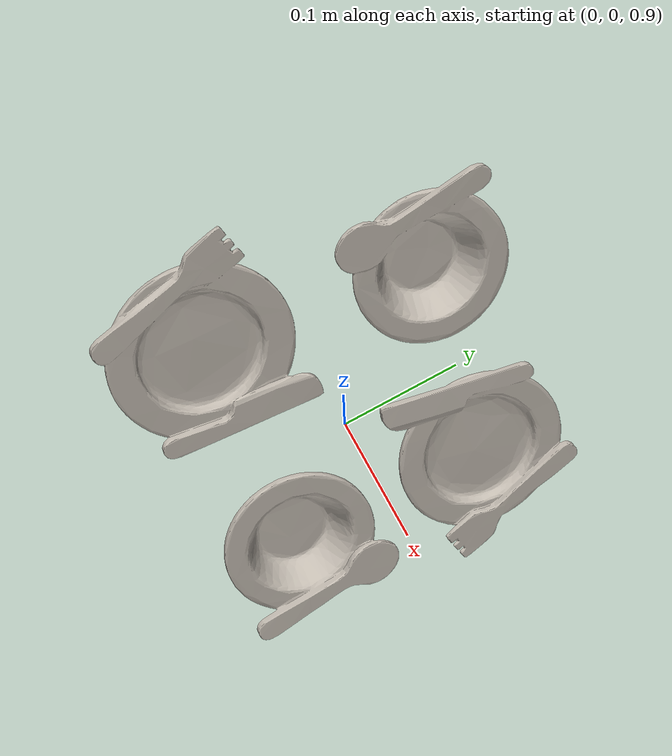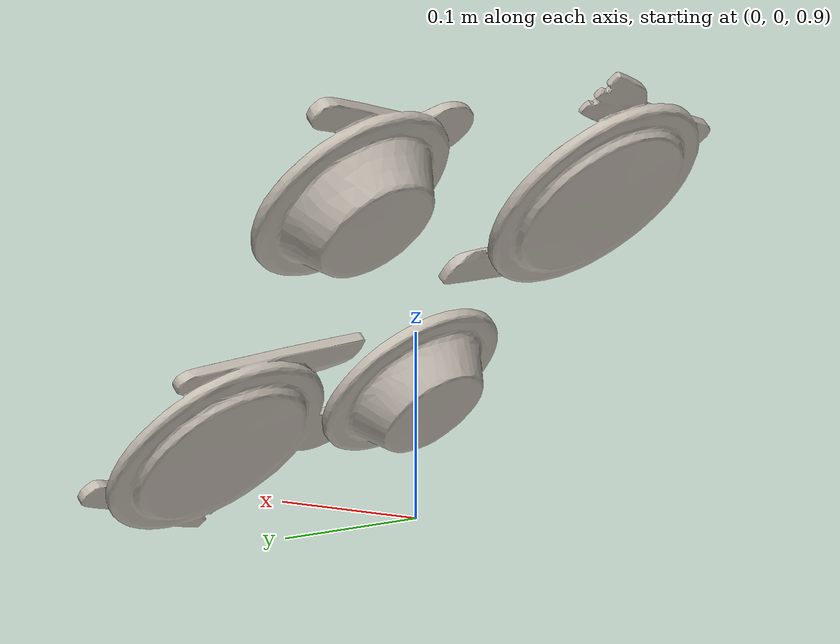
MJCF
<?xml version='1.0' encoding='utf8'?>
<mujoco model="table">
<compiler meshdir="meshes" texturedir="materials/textures" />

<visual>
  <headlight ambient="0 0 0" diffuse="0 0 0" specular="1 1 1" />
  <quality shadowsize="8192" />
</visual>

<asset>
  <texture name="table" file="texture.png" type="2d" />
  <material name="table" texture="table" specular="1" shininess="1" />
  <mesh name="table" file="model.obj" scale="1 1 1" />
  <material name="floor" reflectance=".1" />
</asset>

<worldbody>
  <light pos=".4 -.4 .3" dir="-2 2 -1.5" diffuse=".6 .6 .6" />
  <light pos="-.2 -.4 .3" dir="1 2 -1.5" diffuse=".6 .6 .6" />
  <geom type="plane" size="5 5 .01" rgba="1 1 1 1" material="floor" />
  <body name="object" pos="0 0 1" euler="0 45 0">
    <freejoint />
    <geom type="mesh" material="table" mesh="table" group="2" contype="0" conaffinity="0" />
    <geom type="mesh" mesh="table" group="3" />
  </body>

  <light name="light1" pos="0 0 5" dir="0 0 -1" diffuse=".5 .5 .5" />

</worldbody>
</mujoco>
